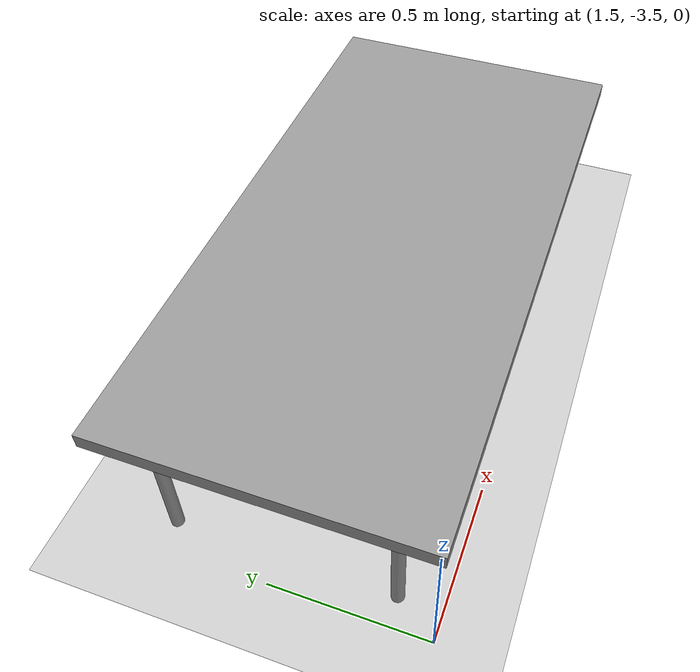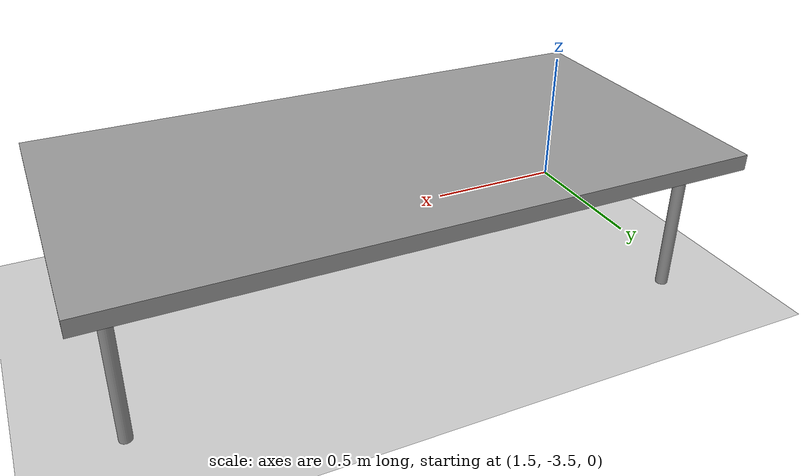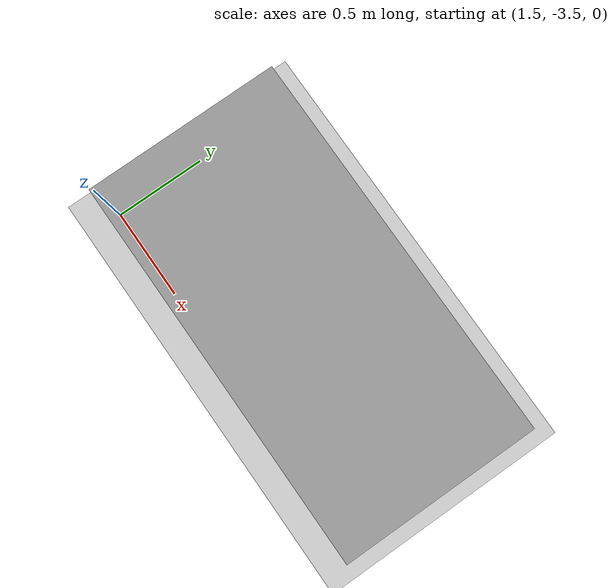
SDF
<sdf version="1.7">
 <world name="default">
  <model name="ground_plane">
   <static>1</static>
   <link name="link">
    <collision name="collision">
     <geometry><plane><normal>0 0 1</normal><size>100 100</size></plane></geometry>
     <surface><friction><ode><mu>100</mu><mu2>50</mu2></ode></friction></surface>
    </collision>
    <visual name="visual">
     <cast_shadows>0</cast_shadows>
     <geometry><plane><normal>0 0 1</normal><size>100 100</size></plane></geometry>
     <material>
      <script><uri>file://media/materials/scripts/gazebo.material</uri><name>Gazebo/Grey</name></script>
     </material>
    </visual>
   </link>
  </model>
  <model name="robcup_bed_0">
   <link name="link">
    <inertial>
     <mass>100</mass>
     <inertia><ixx>2.09333</ixx><ixy>0</ixy><ixz>0</ixz><iyy>2.09333</iyy><iyz>0</iyz><izz>0.02</izz></inertia>
    </inertial>
    <visual name="visual1">
     <pose>0 0 0.5 0 -0 0</pose>
     <geometry><box><size>2 1 0.05</size></box></geometry>
     <material>
      <script><uri>file://media/materials/scripts/gazebo.material</uri><name>Gazebo/Grey</name></script>
      <shader type="pixel"><normal_map>__default__</normal_map></shader>
      <ambient>1 1 1 1</ambient>
      <diffuse>1 1 1 1</diffuse>
      <specular>0.2 0.2 0.2 1</specular>
      <emissive>0 0 0 1</emissive>
     </material>
    </visual>
    <visual name="front_right_leg">
     <pose>0.9 -0.35 0.25 0 -0 0</pose>
     <geometry><cylinder><radius>0.02</radius><length>0.5</length></cylinder></geometry>
     <material>
      <script><uri>file://media/materials/scripts/gazebo.material</uri><name>Gazebo/Grey</name></script>
      <shader type="pixel"><normal_map>__default__</normal_map></shader>
      <ambient>0.3 0.3 0.3 1</ambient>
      <diffuse>0.7 0.7 0.7 1</diffuse>
      <specular>0.01 0.01 0.01 1</specular>
      <emissive>0 0 0 1</emissive>
     </material>
    </visual>
    <visual name="front_left_leg">
     <pose>0.9 0.35 0.25 0 -0 0</pose>
     <geometry><cylinder><radius>0.02</radius><length>0.5</length></cylinder></geometry>
     <material>
      <script><uri>file://media/materials/scripts/gazebo.material</uri><name>Gazebo/Grey</name></script>
      <shader type="pixel"><normal_map>__default__</normal_map></shader>
      <ambient>0.3 0.3 0.3 1</ambient>
      <diffuse>0.7 0.7 0.7 1</diffuse>
      <specular>0.01 0.01 0.01 1</specular>
      <emissive>0 0 0 1</emissive>
     </material>
    </visual>
    <visual name="back_right_leg">
     <pose>-0.9 -0.35 0.25 0 -0 0</pose>
     <geometry><cylinder><radius>0.02</radius><length>0.5</length></cylinder></geometry>
     <material>
      <script><uri>file://media/materials/scripts/gazebo.material</uri><name>Gazebo/Grey</name></script>
      <shader type="pixel"><normal_map>__default__</normal_map></shader>
      <ambient>0.3 0.3 0.3 1</ambient>
      <diffuse>0.7 0.7 0.7 1</diffuse>
      <specular>0.01 0.01 0.01 1</specular>
      <emissive>0 0 0 1</emissive>
     </material>
    </visual>
    <visual name="back_left_leg">
     <pose>-0.9 0.35 0.25 0 -0 0</pose>
     <geometry><cylinder><radius>0.02</radius><length>0.5</length></cylinder></geometry>
     <material>
      <script><uri>file://media/materials/scripts/gazebo.material</uri><name>Gazebo/Grey</name></script>
      <shader type="pixel"><normal_map>__default__</normal_map></shader>
      <ambient>0.3 0.3 0.3 1</ambient>
      <diffuse>0.7 0.7 0.7 1</diffuse>
      <specular>0.01 0.01 0.01 1</specular>
      <emissive>0 0 0 1</emissive>
     </material>
    </visual>
    <collision name="front_left_leg">
     <pose>-0.9 0.35 0.25 0 -0 0</pose>
     <geometry><cylinder><radius>0.02</radius><length>0.5</length></cylinder></geometry>
     <surface>
      <friction>
       <ode><mu>1</mu><mu2>1</mu2><fdir1>0 0 0</fdir1><slip1>0</slip1><slip2>0</slip2></ode>
       <torsional>
        <coefficient>1</coefficient>
        <patch_radius>0</patch_radius>
        <surface_radius>0</surface_radius>
        <use_patch_radius>1</use_patch_radius>
        <ode><slip>0</slip></ode>
       </torsional>
      </friction>
      <bounce><restitution_coefficient>0</restitution_coefficient><threshold>1e+06</threshold></bounce>
      <contact>
       <collide_without_contact>0</collide_without_contact>
       <collide_without_contact_bitmask>1</collide_without_contact_bitmask>
       <collide_bitmask>1</collide_bitmask>
       <ode>
        <soft_cfm>0</soft_cfm>
        <soft_erp>0.2</soft_erp>
        <kp>1e+13</kp>
        <kd>1</kd>
        <max_vel>0.01</max_vel>
        <min_depth>0</min_depth>
       </ode>
       <bullet>
        <split_impulse>1</split_impulse>
        <split_impulse_penetration_threshold>-0.01</split_impulse_penetration_threshold>
        <soft_cfm>0</soft_cfm>
        <soft_erp>0.2</soft_erp>
        <kp>1e+13</kp>
        <kd>1</kd>
       </bullet>
      </contact>
     </surface>
    </collision>
    <collision name="surface">
     <pose>0 0 0.5 0 -0 0</pose>
     <geometry><box><size>2 1 0.03</size></box></geometry>
     <surface>
      <friction>
       <ode><mu>0.6</mu><mu2>0.6</mu2><fdir1>0 0 0</fdir1><slip1>0</slip1><slip2>0</slip2></ode>
       <torsional>
        <coefficient>1</coefficient>
        <patch_radius>0</patch_radius>
        <surface_radius>0</surface_radius>
        <use_patch_radius>1</use_patch_radius>
        <ode><slip>0</slip></ode>
       </torsional>
      </friction>
      <bounce><restitution_coefficient>0</restitution_coefficient><threshold>1e+06</threshold></bounce>
      <contact>
       <collide_without_contact>0</collide_without_contact>
       <collide_without_contact_bitmask>1</collide_without_contact_bitmask>
       <collide_bitmask>1</collide_bitmask>
       <ode>
        <soft_cfm>0</soft_cfm>
        <soft_erp>0.2</soft_erp>
        <kp>1e+13</kp>
        <kd>1</kd>
        <max_vel>0.01</max_vel>
        <min_depth>0</min_depth>
       </ode>
       <bullet>
        <split_impulse>1</split_impulse>
        <split_impulse_penetration_threshold>-0.01</split_impulse_penetration_threshold>
        <soft_cfm>0</soft_cfm>
        <soft_erp>0.2</soft_erp>
        <kp>1e+13</kp>
        <kd>1</kd>
       </bullet>
      </contact>
     </surface>
    </collision>
    <collision name="back_left_leg">
     <pose>-0.9 0.35 0.25 0 -0 0</pose>
     <geometry><cylinder><radius>0.02</radius><length>0.5</length></cylinder></geometry>
     <surface>
      <friction>
       <ode><mu>1</mu><mu2>1</mu2><fdir1>0 0 0</fdir1><slip1>0</slip1><slip2>0</slip2></ode>
       <torsional>
        <coefficient>1</coefficient>
        <patch_radius>0</patch_radius>
        <surface_radius>0</surface_radius>
        <use_patch_radius>1</use_patch_radius>
        <ode><slip>0</slip></ode>
       </torsional>
      </friction>
      <bounce><restitution_coefficient>0</restitution_coefficient><threshold>1e+06</threshold></bounce>
      <contact>
       <collide_without_contact>0</collide_without_contact>
       <collide_without_contact_bitmask>1</collide_without_contact_bitmask>
       <collide_bitmask>1</collide_bitmask>
       <ode>
        <soft_cfm>0</soft_cfm>
        <soft_erp>0.2</soft_erp>
        <kp>1e+13</kp>
        <kd>1</kd>
        <max_vel>0.01</max_vel>
        <min_depth>0</min_depth>
       </ode>
       <bullet>
        <split_impulse>1</split_impulse>
        <split_impulse_penetration_threshold>-0.01</split_impulse_penetration_threshold>
        <soft_cfm>0</soft_cfm>
        <soft_erp>0.2</soft_erp>
        <kp>1e+13</kp>
        <kd>1</kd>
       </bullet>
      </contact>
     </surface>
    </collision>
    <collision name="back_right_leg">
     <pose>-0.9 -0.35 0.25 0 -0 0</pose>
     <geometry><cylinder><radius>0.02</radius><length>0.5</length></cylinder></geometry>
     <surface>
      <friction>
       <ode><mu>1</mu><mu2>1</mu2><fdir1>0 0 0</fdir1><slip1>0</slip1><slip2>0</slip2></ode>
       <torsional>
        <coefficient>1</coefficient>
        <patch_radius>0</patch_radius>
        <surface_radius>0</surface_radius>
        <use_patch_radius>1</use_patch_radius>
        <ode><slip>0</slip></ode>
       </torsional>
      </friction>
      <bounce><restitution_coefficient>0</restitution_coefficient><threshold>1e+06</threshold></bounce>
      <contact>
       <collide_without_contact>0</collide_without_contact>
       <collide_without_contact_bitmask>1</collide_without_contact_bitmask>
       <collide_bitmask>1</collide_bitmask>
       <ode>
        <soft_cfm>0</soft_cfm>
        <soft_erp>0.2</soft_erp>
        <kp>1e+13</kp>
        <kd>1</kd>
        <max_vel>0.01</max_vel>
        <min_depth>0</min_depth>
       </ode>
       <bullet>
        <split_impulse>1</split_impulse>
        <split_impulse_penetration_threshold>-0.01</split_impulse_penetration_threshold>
        <soft_cfm>0</soft_cfm>
        <soft_erp>0.2</soft_erp>
        <kp>1e+13</kp>
        <kd>1</kd>
       </bullet>
      </contact>
     </surface>
    </collision>
    <collision name="front_right_leg">
     <pose>0.9 -0.35 0.25 0 -0 0</pose>
     <geometry><cylinder><radius>0.02</radius><length>0.5</length></cylinder></geometry>
     <surface>
      <friction>
       <ode><mu>1</mu><mu2>1</mu2><fdir1>0 0 0</fdir1><slip1>0</slip1><slip2>0</slip2></ode>
       <torsional>
        <coefficient>1</coefficient>
        <patch_radius>0</patch_radius>
        <surface_radius>0</surface_radius>
        <use_patch_radius>1</use_patch_radius>
        <ode><slip>0</slip></ode>
       </torsional>
      </friction>
      <bounce><restitution_coefficient>0</restitution_coefficient><threshold>1e+06</threshold></bounce>
      <contact>
       <collide_without_contact>0</collide_without_contact>
       <collide_without_contact_bitmask>1</collide_without_contact_bitmask>
       <collide_bitmask>1</collide_bitmask>
       <ode>
        <soft_cfm>0</soft_cfm>
        <soft_erp>0.2</soft_erp>
        <kp>1e+13</kp>
        <kd>1</kd>
        <max_vel>0.01</max_vel>
        <min_depth>0</min_depth>
       </ode>
       <bullet>
        <split_impulse>1</split_impulse>
        <split_impulse_penetration_threshold>-0.01</split_impulse_penetration_threshold>
        <soft_cfm>0</soft_cfm>
        <soft_erp>0.2</soft_erp>
        <kp>1e+13</kp>
        <kd>1</kd>
       </bullet>
      </contact>
     </surface>
    </collision>
   </link>
   <static>1</static>
   <pose>2.49325 -3.01355 0 0 -0 0</pose>
  </model>
 </world>
</sdf>
